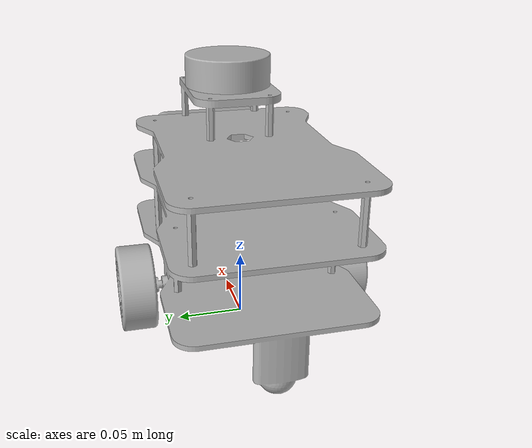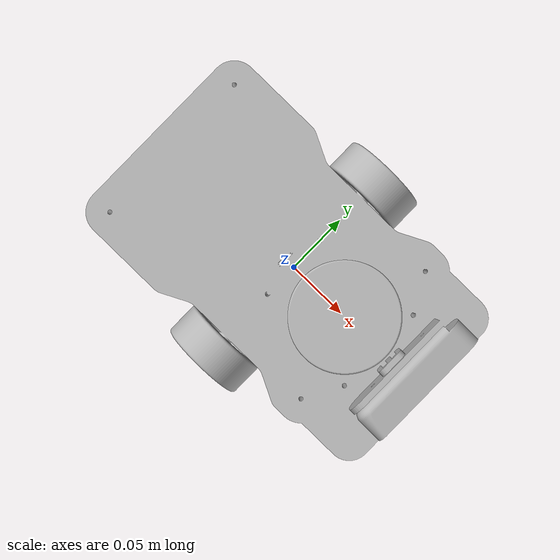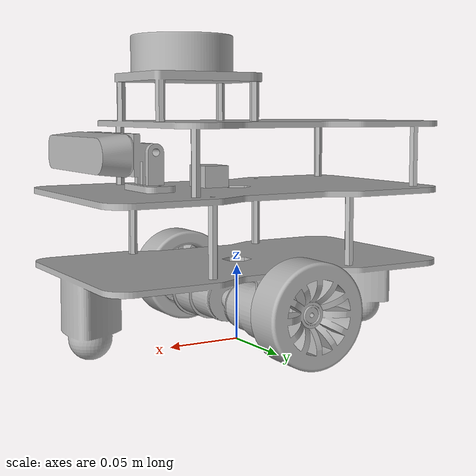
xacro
<?xml version="1.0" ?>
<robot name="gogo" xmlns:xacro="http://www.ros.org/wiki/xacro">

<xacro:include filename="$(find gogo_description)/urdf/materials.xacro" />
<xacro:include filename="$(find gogo_description)/urdf/gogo.ros2control" />
<xacro:include filename="$(find gogo_description)/urdf/gogo.gazebo" />
<link name="base_link">
  <inertial>
    <origin xyz="0.00014891641118042382 -3.330593326496944e-05 0.08014365341587747" rpy="0 0 0"/>
    <mass value="4.296738201060667"/>
    <inertia ixx="0.015568" iyy="0.030421" izz="0.025452" ixy="-4e-06" iyz="-1.1e-05" ixz="-4.7e-05"/>
  </inertial>
  <visual>
    <origin xyz="0 0 0" rpy="0 0 0"/>
    <geometry>
      <mesh filename="file://$(find gogo_description)/meshes/base_link.stl" scale="0.001 0.001 0.001"/>
    </geometry>
    <material name="silver"/>
  </visual>
  <collision>
    <origin xyz="0 0 0" rpy="0 0 0"/>
    <geometry>
      <mesh filename="file://$(find gogo_description)/meshes/base_link.stl" scale="0.001 0.001 0.001"/>
    </geometry>
  </collision>
</link>

<link name="left_wheel_1">
  <inertial>
    <origin xyz="-1.6009851092257577e-09 -0.00014170388341636087 -5.752817092835594e-08" rpy="0 0 0"/>
    <mass value="0.4188079906789551"/>
    <inertia ixx="0.000166" iyy="0.000289" izz="0.000166" ixy="-0.0" iyz="-0.0" ixz="0.0"/>
  </inertial>
  <visual>
    <origin xyz="-0.0 -0.0837 -0.0325" rpy="0 0 0"/>
    <geometry>
      <mesh filename="file://$(find gogo_description)/meshes/left_wheel_1.stl" scale="0.001 0.001 0.001"/>
    </geometry>
    <material name="silver"/>
  </visual>
  <collision>
    <origin xyz="-0.0 -0.0837 -0.0325" rpy="0 0 0"/>
    <geometry>
      <mesh filename="file://$(find gogo_description)/meshes/left_wheel_1.stl" scale="0.001 0.001 0.001"/>
    </geometry>
  </collision>
</link>

<link name="right_wheel_1">
  <inertial>
    <origin xyz="-1.600985107228026e-09 0.00014170388341636087 -5.752817091447815e-08" rpy="0 0 0"/>
    <mass value="0.4188079906789563"/>
    <inertia ixx="0.000166" iyy="0.000289" izz="0.000166" ixy="0.0" iyz="0.0" ixz="0.0"/>
  </inertial>
  <visual>
    <origin xyz="-0.0 0.0837 -0.0325" rpy="0 0 0"/>
    <geometry>
      <mesh filename="file://$(find gogo_description)/meshes/right_wheel_1.stl" scale="0.001 0.001 0.001"/>
    </geometry>
    <material name="silver"/>
  </visual>
  <collision>
    <origin xyz="-0.0 0.0837 -0.0325" rpy="0 0 0"/>
    <geometry>
      <mesh filename="file://$(find gogo_description)/meshes/right_wheel_1.stl" scale="0.001 0.001 0.001"/>
    </geometry>
  </collision>
</link>

<link name="lidar_link_1">
  <inertial>
    <origin xyz="0.0065000005066394445 -2.1410336840418575e-17 0.011743563677556662" rpy="0 0 0"/>
    <mass value="0.611803086230873"/>
    <inertia ixx="0.00019" iyy="0.00019" izz="0.000323" ixy="0.0" iyz="0.0" ixz="0.0"/>
  </inertial>
  <visual>
    <origin xyz="-0.034 0.0 -0.1771" rpy="0 0 0"/>
    <geometry>
      <mesh filename="file://$(find gogo_description)/meshes/lidar_link_1.stl" scale="0.001 0.001 0.001"/>
    </geometry>
    <material name="silver"/>
  </visual>
  <collision>
    <origin xyz="-0.034 0.0 -0.1771" rpy="0 0 0"/>
    <geometry>
      <mesh filename="file://$(find gogo_description)/meshes/lidar_link_1.stl" scale="0.001 0.001 0.001"/>
    </geometry>
  </collision>
</link>

<link name="camera_link_1">
  <inertial>
    <origin xyz="0.011637811135220555 0.0033041320198746245 -9.733004069367723e-09" rpy="0 0 0"/>
    <mass value="0.34982474377882367"/>
    <inertia ixx="0.000228" iyy="2.9e-05" izz="0.000227" ixy="-2e-06" iyz="-0.0" ixz="0.0"/>
  </inertial>
  <visual>
    <origin xyz="-0.0925 0.0 -0.1274" rpy="0 0 0"/>
    <geometry>
      <mesh filename="file://$(find gogo_description)/meshes/camera_link_1.stl" scale="0.001 0.001 0.001"/>
    </geometry>
    <material name="silver"/>
  </visual>
  <collision>
    <origin xyz="-0.0925 0.0 -0.1274" rpy="0 0 0"/>
    <geometry>
      <mesh filename="file://$(find gogo_description)/meshes/camera_link_1.stl" scale="0.001 0.001 0.001"/>
    </geometry>
  </collision>
</link>

<link name="imu_link_1">
  <inertial>
    <origin xyz="0.012999545587839903 -0.003999810413309962 0.008000000000000035" rpy="0 0 0"/>
    <mass value="0.04016845000000001"/>
    <inertia ixx="2e-06" iyy="2e-06" izz="3e-06" ixy="0.0" iyz="-0.0" ixz="0.0"/>
  </inertial>
  <visual>
    <origin xyz="-0.008683 -0.004961 -0.1029" rpy="0 0 0"/>
    <geometry>
      <mesh filename="file://$(find gogo_description)/meshes/imu_link_1.stl" scale="0.001 0.001 0.001"/>
    </geometry>
    <material name="silver"/>
  </visual>
  <collision>
    <origin xyz="-0.008683 -0.004961 -0.1029" rpy="0 0 0"/>
    <geometry>
      <mesh filename="file://$(find gogo_description)/meshes/imu_link_1.stl" scale="0.001 0.001 0.001"/>
    </geometry>
  </collision>
</link>

<joint name="Revolute 1" type="continuous">
  <origin xyz="0.0 0.0837 0.0325" rpy="0 0 0"/>
  <parent link="base_link"/>
  <child link="left_wheel_1"/>
  <axis xyz="0.0 -1.0 0.0"/>
</joint>

<joint name="Revolute 2" type="continuous">
  <origin xyz="0.0 -0.0837 0.0325" rpy="0 0 0"/>
  <parent link="base_link"/>
  <child link="right_wheel_1"/>
  <axis xyz="0.0 -1.0 0.0"/>
</joint>

<joint name="Rigid 3" type="fixed">
  <origin xyz="0.034 0.0 0.1771" rpy="0 0 0"/>
  <parent link="base_link"/>
  <child link="lidar_link_1"/>
</joint>

<joint name="Rigid 4" type="fixed">
  <origin xyz="0.0925 0.0 0.1274" rpy="0 0 0"/>
  <parent link="base_link"/>
  <child link="camera_link_1"/>
</joint>

<joint name="Rigid 5" type="fixed">
  <origin xyz="0.008683 0.004961 0.1029" rpy="0 0 0"/>
  <parent link="base_link"/>
  <child link="imu_link_1"/>
</joint>

</robot>

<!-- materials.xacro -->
<robot name="gogo" xmlns:xacro="http://www.ros.org/wiki/xacro" >

<material name="silver">
  <color rgba="0.700 0.700 0.700 1.000"/>
</material>

</robot>

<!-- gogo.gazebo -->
<robot name="gogo" xmlns:xacro="http://www.ros.org/wiki/xacro" >

<xacro:property name="body_color" value="Gazebo/Silver" />

<gazebo reference="base_link">
  <material>${body_color}</material>
  <mu1>0.2</mu1>
  <mu2>0.2</mu2>
  <self_collide>true</self_collide>
  <gravity>true</gravity>
</gazebo>

<gazebo reference="left_wheel_1">
  <material>${body_color}</material>
  <mu1>0.2</mu1>
  <mu2>0.2</mu2>
  <self_collide>true</self_collide>
</gazebo>

<gazebo reference="right_wheel_1">
  <material>${body_color}</material>
  <mu1>0.2</mu1>
  <mu2>0.2</mu2>
  <self_collide>true</self_collide>
</gazebo>

<gazebo reference="lidar_link_1">
  <material>${body_color}</material>
  <mu1>0.2</mu1>
  <mu2>0.2</mu2>
  <self_collide>true</self_collide>
</gazebo>

<gazebo reference="camera_link_1">
  <material>${body_color}</material>
  <mu1>0.2</mu1>
  <mu2>0.2</mu2>
  <self_collide>true</self_collide>
</gazebo>

<gazebo reference="imu_link_1">
  <material>${body_color}</material>
  <mu1>0.2</mu1>
  <mu2>0.2</mu2>
  <self_collide>true</self_collide>
</gazebo>

</robot>
